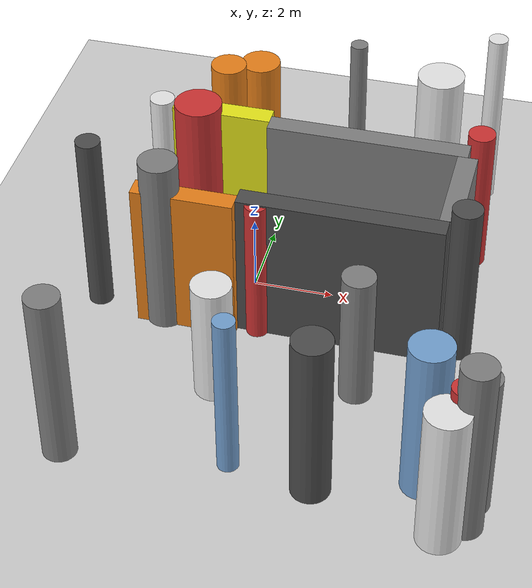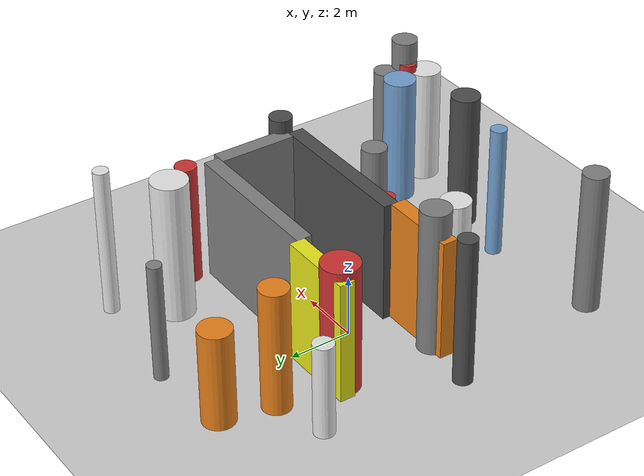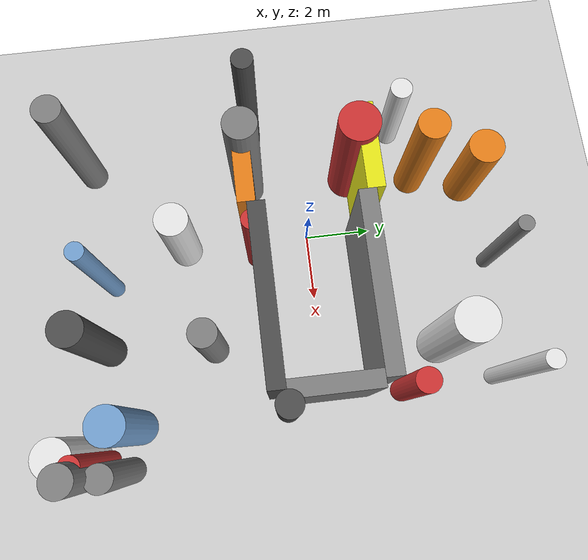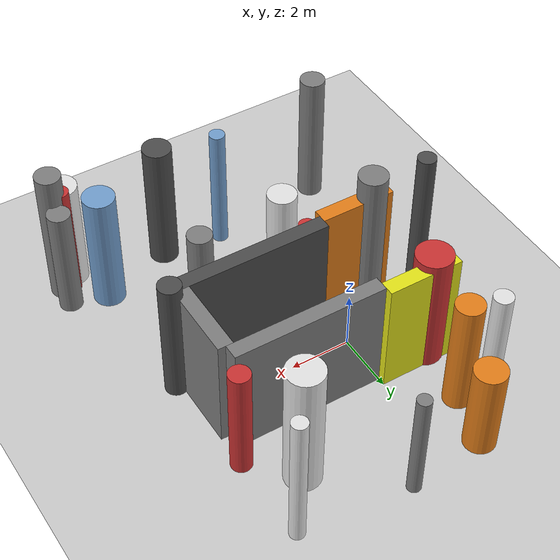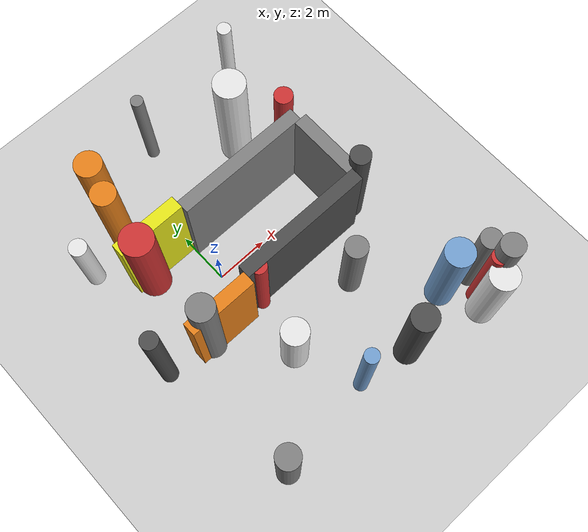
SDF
<?xml version='1.0'?>
<sdf version='1.6'>
  <world name='routeA_rl_v1__dense_recovery__rl_train__cul_de_sac_trap__000083'>
    <!-- Sun light -->
    <light name='sun' type='directional'>
      <cast_shadows>1</cast_shadows>
      <pose>0 0 10 0 0 0</pose>
      <diffuse>0.8 0.8 0.8 1</diffuse>
      <specular>0.2 0.2 0.2 1</specular>
      <attenuation>
        <range>1000</range>
        <constant>0.9</constant>
        <linear>0.01</linear>
        <quadratic>0.001</quadratic>
      </attenuation>
      <direction>-0.5 0.1 -0.9</direction>
    </light>

    <!-- Ground plane -->
    <model name='ground_plane'>
      <static>1</static>
      <link name='link'>
        <collision name='collision'>
          <geometry>
            <plane>
              <normal>0 0 1</normal>
              <size>100 100</size>
            </plane>
          </geometry>
          <surface>
            <contact>
              <collide_bitmask>65535</collide_bitmask>
              <ode/>
            </contact>
            <friction>
              <ode>
                <mu>100</mu>
                <mu2>50</mu2>
              </ode>
              <torsional><ode/></torsional>
            </friction>
            <bounce/>
          </surface>
          <max_contacts>10</max_contacts>
        </collision>
        <visual name='visual'>
          <cast_shadows>0</cast_shadows>
          <geometry>
            <plane>
              <normal>0 0 1</normal>
              <size>100 100</size>
            </plane>
          </geometry>
          <material>
            <script>
              <uri>file://media/materials/scripts/gazebo.material</uri>
              <n>Gazebo/Grey</n>
            </script>
          </material>
        </visual>
      </link>
    </model>

    <!-- Environment -->
    <magnetic_field>6e-06 2.3e-05 -4.2e-05</magnetic_field>
    <atmosphere type='adiabatic'/>
    <physics name='default_physics' default='0' type='ode'>
      <gravity>0 0 -9.8</gravity>
      <max_step_size>0.004</max_step_size>
      <real_time_factor>1</real_time_factor>
      <real_time_update_rate>250</real_time_update_rate>
    </physics>
    <scene>
      <ambient>0.4 0.4 0.4 1</ambient>
      <background>0.7 0.7 0.7 1</background>
      <shadows>1</shadows>
    </scene>
    <wind/>
    <spherical_coordinates>
      <surface_model>EARTH_WGS84</surface_model>
      <latitude_deg>0</latitude_deg>
      <longitude_deg>0</longitude_deg>
      <elevation>0</elevation>
      <heading_deg>0</heading_deg>
    </spherical_coordinates>

    <!-- ============ OBSTACLES (27) ============ -->
    <model name='trap_side_l'>
      <static>1</static>
      <link name='link'>
        <visual name='visual'>
          <geometry>
            <box>
              <size>5.0000 0.5000 4.0000</size>
            </box>
          </geometry>
          <material>
            <script>
              <n>Gazebo/DarkGrey</n>
              <uri>file://media/materials/scripts/gazebo.material</uri>
            </script>
            <ambient>0.3 0.3 0.3 1</ambient>
          </material>
        </visual>
        <collision name='collision'>
          <geometry>
            <box>
              <size>5.0000 0.5000 4.0000</size>
            </box>
          </geometry>
          <max_contacts>10</max_contacts>
          <surface>
            <contact><ode/></contact>
            <bounce/>
            <friction>
              <ode><mu>1</mu><mu2>1</mu2></ode>
              <torsional><ode/></torsional>
            </friction>
          </surface>
        </collision>
      </link>
      <pose>2.5000 -1.5000 2.0000 0 0 0.0000</pose>
    </model>

    <model name='trap_side_r'>
      <static>1</static>
      <link name='link'>
        <visual name='visual'>
          <geometry>
            <box>
              <size>5.0000 0.5000 4.0000</size>
            </box>
          </geometry>
          <material>
            <script>
              <n>Gazebo/Grey</n>
              <uri>file://media/materials/scripts/gazebo.material</uri>
            </script>
            <ambient>0.5 0.5 0.5 1</ambient>
          </material>
        </visual>
        <collision name='collision'>
          <geometry>
            <box>
              <size>5.0000 0.5000 4.0000</size>
            </box>
          </geometry>
          <max_contacts>10</max_contacts>
          <surface>
            <contact><ode/></contact>
            <bounce/>
            <friction>
              <ode><mu>1</mu><mu2>1</mu2></ode>
              <torsional><ode/></torsional>
            </friction>
          </surface>
        </collision>
      </link>
      <pose>2.5000 1.5000 2.0000 0 0 0.0000</pose>
    </model>

    <model name='trap_back'>
      <static>1</static>
      <link name='link'>
        <visual name='visual'>
          <geometry>
            <box>
              <size>0.5000 2.5000 4.0000</size>
            </box>
          </geometry>
          <material>
            <script>
              <n>Gazebo/Grey</n>
              <uri>file://media/materials/scripts/gazebo.material</uri>
            </script>
            <ambient>0.5 0.5 0.5 1</ambient>
          </material>
        </visual>
        <collision name='collision'>
          <geometry>
            <box>
              <size>0.5000 2.5000 4.0000</size>
            </box>
          </geometry>
          <max_contacts>10</max_contacts>
          <surface>
            <contact><ode/></contact>
            <bounce/>
            <friction>
              <ode><mu>1</mu><mu2>1</mu2></ode>
              <torsional><ode/></torsional>
            </friction>
          </surface>
        </collision>
      </link>
      <pose>5.0000 0.0000 2.0000 0 0 0.0000</pose>
    </model>

    <model name='trap_funnel_l'>
      <static>1</static>
      <link name='link'>
        <visual name='visual'>
          <geometry>
            <box>
              <size>2.5000 0.5000 4.0000</size>
            </box>
          </geometry>
          <material>
            <script>
              <n>Gazebo/Orange</n>
              <uri>file://media/materials/scripts/gazebo.material</uri>
            </script>
            <ambient>0.9 0.5 0.1 1</ambient>
          </material>
        </visual>
        <collision name='collision'>
          <geometry>
            <box>
              <size>2.5000 0.5000 4.0000</size>
            </box>
          </geometry>
          <max_contacts>10</max_contacts>
          <surface>
            <contact><ode/></contact>
            <bounce/>
            <friction>
              <ode><mu>1</mu><mu2>1</mu2></ode>
              <torsional><ode/></torsional>
            </friction>
          </surface>
        </collision>
      </link>
      <pose>-1.2500 -1.7500 2.0000 0 0 0.0000</pose>
    </model>

    <model name='trap_funnel_r'>
      <static>1</static>
      <link name='link'>
        <visual name='visual'>
          <geometry>
            <box>
              <size>2.5000 0.5000 4.0000</size>
            </box>
          </geometry>
          <material>
            <script>
              <n>Gazebo/Yellow</n>
              <uri>file://media/materials/scripts/gazebo.material</uri>
            </script>
            <ambient>0.9 0.9 0.1 1</ambient>
          </material>
        </visual>
        <collision name='collision'>
          <geometry>
            <box>
              <size>2.5000 0.5000 4.0000</size>
            </box>
          </geometry>
          <max_contacts>10</max_contacts>
          <surface>
            <contact><ode/></contact>
            <bounce/>
            <friction>
              <ode><mu>1</mu><mu2>1</mu2></ode>
              <torsional><ode/></torsional>
            </friction>
          </surface>
        </collision>
      </link>
      <pose>-1.2500 1.7500 2.0000 0 0 0.0000</pose>
    </model>

    <model name='trap_scatter_0'>
      <static>1</static>
      <link name='link'>
        <visual name='visual'>
          <geometry>
            <cylinder>
              <radius>0.4893</radius>
              <length>3.2595</length>
            </cylinder>
          </geometry>
          <material>
            <script>
              <n>Gazebo/White</n>
              <uri>file://media/materials/scripts/gazebo.material</uri>
            </script>
            <ambient>0.9 0.9 0.9 1</ambient>
          </material>
        </visual>
        <collision name='collision'>
          <geometry>
            <cylinder>
              <radius>0.4893</radius>
              <length>3.2595</length>
            </cylinder>
          </geometry>
          <max_contacts>10</max_contacts>
          <surface>
            <contact><ode/></contact>
            <bounce/>
            <friction>
              <ode><mu>1</mu><mu2>1</mu2></ode>
              <torsional><ode/></torsional>
            </friction>
          </surface>
        </collision>
      </link>
      <pose>0.0120 -3.8799 1.6297 0 0 0.0000</pose>
    </model>

    <model name='trap_scatter_1'>
      <static>1</static>
      <link name='link'>
        <visual name='visual'>
          <geometry>
            <cylinder>
              <radius>0.2788</radius>
              <length>3.9570</length>
            </cylinder>
          </geometry>
          <material>
            <script>
              <n>Gazebo/Red</n>
              <uri>file://media/materials/scripts/gazebo.material</uri>
            </script>
            <ambient>0.8 0.2 0.2 1</ambient>
          </material>
        </visual>
        <collision name='collision'>
          <geometry>
            <cylinder>
              <radius>0.2788</radius>
              <length>3.9570</length>
            </cylinder>
          </geometry>
          <max_contacts>10</max_contacts>
          <surface>
            <contact><ode/></contact>
            <bounce/>
            <friction>
              <ode><mu>1</mu><mu2>1</mu2></ode>
              <torsional><ode/></torsional>
            </friction>
          </surface>
        </collision>
      </link>
      <pose>0.4914 -1.6785 1.9785 0 0 0.0000</pose>
    </model>

    <model name='trap_scatter_2'>
      <static>1</static>
      <link name='link'>
        <visual name='visual'>
          <geometry>
            <cylinder>
              <radius>0.4798</radius>
              <length>4.8194</length>
            </cylinder>
          </geometry>
          <material>
            <script>
              <n>Gazebo/Grey</n>
              <uri>file://media/materials/scripts/gazebo.material</uri>
            </script>
            <ambient>0.5 0.5 0.5 1</ambient>
          </material>
        </visual>
        <collision name='collision'>
          <geometry>
            <cylinder>
              <radius>0.4798</radius>
              <length>4.8194</length>
            </cylinder>
          </geometry>
          <max_contacts>10</max_contacts>
          <surface>
            <contact><ode/></contact>
            <bounce/>
            <friction>
              <ode><mu>1</mu><mu2>1</mu2></ode>
              <torsional><ode/></torsional>
            </friction>
          </surface>
        </collision>
      </link>
      <pose>-1.8559 -1.6925 2.4097 0 0 0.0000</pose>
    </model>

    <model name='trap_scatter_3'>
      <static>1</static>
      <link name='link'>
        <visual name='visual'>
          <geometry>
            <cylinder>
              <radius>0.4205</radius>
              <length>4.8730</length>
            </cylinder>
          </geometry>
          <material>
            <script>
              <n>Gazebo/Grey</n>
              <uri>file://media/materials/scripts/gazebo.material</uri>
            </script>
            <ambient>0.5 0.5 0.5 1</ambient>
          </material>
        </visual>
        <collision name='collision'>
          <geometry>
            <cylinder>
              <radius>0.4205</radius>
              <length>4.8730</length>
            </cylinder>
          </geometry>
          <max_contacts>10</max_contacts>
          <surface>
            <contact><ode/></contact>
            <bounce/>
            <friction>
              <ode><mu>1</mu><mu2>1</mu2></ode>
              <torsional><ode/></torsional>
            </friction>
          </surface>
        </collision>
      </link>
      <pose>6.5263 -6.7231 2.4365 0 0 0.0000</pose>
    </model>

    <model name='trap_scatter_4'>
      <static>1</static>
      <link name='link'>
        <visual name='visual'>
          <geometry>
            <cylinder>
              <radius>0.5850</radius>
              <length>4.6488</length>
            </cylinder>
          </geometry>
          <material>
            <script>
              <n>Gazebo/White</n>
              <uri>file://media/materials/scripts/gazebo.material</uri>
            </script>
            <ambient>0.9 0.9 0.9 1</ambient>
          </material>
        </visual>
        <collision name='collision'>
          <geometry>
            <cylinder>
              <radius>0.5850</radius>
              <length>4.6488</length>
            </cylinder>
          </geometry>
          <max_contacts>10</max_contacts>
          <surface>
            <contact><ode/></contact>
            <bounce/>
            <friction>
              <ode><mu>1</mu><mu2>1</mu2></ode>
              <torsional><ode/></torsional>
            </friction>
          </surface>
        </collision>
      </link>
      <pose>3.9016 3.5693 2.3244 0 0 0.0000</pose>
    </model>

    <model name='trap_scatter_8'>
      <static>1</static>
      <link name='link'>
        <visual name='visual'>
          <geometry>
            <cylinder>
              <radius>0.2462</radius>
              <length>4.9229</length>
            </cylinder>
          </geometry>
          <material>
            <script>
              <n>Gazebo/White</n>
              <uri>file://media/materials/scripts/gazebo.material</uri>
            </script>
            <ambient>0.9 0.9 0.9 1</ambient>
          </material>
        </visual>
        <collision name='collision'>
          <geometry>
            <cylinder>
              <radius>0.2462</radius>
              <length>4.9229</length>
            </cylinder>
          </geometry>
          <max_contacts>10</max_contacts>
          <surface>
            <contact><ode/></contact>
            <bounce/>
            <friction>
              <ode><mu>1</mu><mu2>1</mu2></ode>
              <torsional><ode/></torsional>
            </friction>
          </surface>
        </collision>
      </link>
      <pose>5.0758 5.1373 2.4615 0 0 0.0000</pose>
    </model>

    <model name='trap_scatter_9'>
      <static>1</static>
      <link name='link'>
        <visual name='visual'>
          <geometry>
            <cylinder>
              <radius>0.5156</radius>
              <length>3.1674</length>
            </cylinder>
          </geometry>
          <material>
            <script>
              <n>Gazebo/Orange</n>
              <uri>file://media/materials/scripts/gazebo.material</uri>
            </script>
            <ambient>0.9 0.5 0.1 1</ambient>
          </material>
        </visual>
        <collision name='collision'>
          <geometry>
            <cylinder>
              <radius>0.5156</radius>
              <length>3.1674</length>
            </cylinder>
          </geometry>
          <max_contacts>10</max_contacts>
          <surface>
            <contact><ode/></contact>
            <bounce/>
            <friction>
              <ode><mu>1</mu><mu2>1</mu2></ode>
              <torsional><ode/></torsional>
            </friction>
          </surface>
        </collision>
      </link>
      <pose>-1.1852 5.2068 1.5837 0 0 0.0000</pose>
    </model>

    <model name='trap_scatter_10'>
      <static>1</static>
      <link name='link'>
        <visual name='visual'>
          <geometry>
            <cylinder>
              <radius>0.4062</radius>
              <length>3.6603</length>
            </cylinder>
          </geometry>
          <material>
            <script>
              <n>Gazebo/Grey</n>
              <uri>file://media/materials/scripts/gazebo.material</uri>
            </script>
            <ambient>0.5 0.5 0.5 1</ambient>
          </material>
        </visual>
        <collision name='collision'>
          <geometry>
            <cylinder>
              <radius>0.4062</radius>
              <length>3.6603</length>
            </cylinder>
          </geometry>
          <max_contacts>10</max_contacts>
          <surface>
            <contact><ode/></contact>
            <bounce/>
            <friction>
              <ode><mu>1</mu><mu2>1</mu2></ode>
              <torsional><ode/></torsional>
            </friction>
          </surface>
        </collision>
      </link>
      <pose>3.3074 -3.2465 1.8302 0 0 0.0000</pose>
    </model>

    <model name='trap_scatter_11'>
      <static>1</static>
      <link name='link'>
        <visual name='visual'>
          <geometry>
            <cylinder>
              <radius>0.4126</radius>
              <length>4.7134</length>
            </cylinder>
          </geometry>
          <material>
            <script>
              <n>Gazebo/Grey</n>
              <uri>file://media/materials/scripts/gazebo.material</uri>
            </script>
            <ambient>0.5 0.5 0.5 1</ambient>
          </material>
        </visual>
        <collision name='collision'>
          <geometry>
            <cylinder>
              <radius>0.4126</radius>
              <length>4.7134</length>
            </cylinder>
          </geometry>
          <max_contacts>10</max_contacts>
          <surface>
            <contact><ode/></contact>
            <bounce/>
            <friction>
              <ode><mu>1</mu><mu2>1</mu2></ode>
              <torsional><ode/></torsional>
            </friction>
          </surface>
        </collision>
      </link>
      <pose>-2.8849 -6.6988 2.3567 0 0 0.0000</pose>
    </model>

    <model name='trap_scatter_12'>
      <static>1</static>
      <link name='link'>
        <visual name='visual'>
          <geometry>
            <cylinder>
              <radius>0.3251</radius>
              <length>3.0694</length>
            </cylinder>
          </geometry>
          <material>
            <script>
              <n>Gazebo/White</n>
              <uri>file://media/materials/scripts/gazebo.material</uri>
            </script>
            <ambient>0.9 0.9 0.9 1</ambient>
          </material>
        </visual>
        <collision name='collision'>
          <geometry>
            <cylinder>
              <radius>0.3251</radius>
              <length>3.0694</length>
            </cylinder>
          </geometry>
          <max_contacts>10</max_contacts>
          <surface>
            <contact><ode/></contact>
            <bounce/>
            <friction>
              <ode><mu>1</mu><mu2>1</mu2></ode>
              <torsional><ode/></torsional>
            </friction>
          </surface>
        </collision>
      </link>
      <pose>-3.2958 3.0992 1.5347 0 0 0.0000</pose>
    </model>

    <model name='trap_scatter_13'>
      <static>1</static>
      <link name='link'>
        <visual name='visual'>
          <geometry>
            <cylinder>
              <radius>0.2594</radius>
              <length>4.4366</length>
            </cylinder>
          </geometry>
          <material>
            <script>
              <n>Gazebo/Blue</n>
              <uri>file://media/materials/scripts/gazebo.material</uri>
            </script>
            <ambient>0.447 0.624 0.812 1</ambient>
          </material>
        </visual>
        <collision name='collision'>
          <geometry>
            <cylinder>
              <radius>0.2594</radius>
              <length>4.4366</length>
            </cylinder>
          </geometry>
          <max_contacts>10</max_contacts>
          <surface>
            <contact><ode/></contact>
            <bounce/>
            <friction>
              <ode><mu>1</mu><mu2>1</mu2></ode>
              <torsional><ode/></torsional>
            </friction>
          </surface>
        </collision>
      </link>
      <pose>0.9885 -6.2040 2.2183 0 0 0.0000</pose>
    </model>

    <model name='trap_scatter_14'>
      <static>1</static>
      <link name='link'>
        <visual name='visual'>
          <geometry>
            <cylinder>
              <radius>0.2834</radius>
              <length>4.1544</length>
            </cylinder>
          </geometry>
          <material>
            <script>
              <n>Gazebo/Red</n>
              <uri>file://media/materials/scripts/gazebo.material</uri>
            </script>
            <ambient>0.8 0.2 0.2 1</ambient>
          </material>
        </visual>
        <collision name='collision'>
          <geometry>
            <cylinder>
              <radius>0.2834</radius>
              <length>4.1544</length>
            </cylinder>
          </geometry>
          <max_contacts>10</max_contacts>
          <surface>
            <contact><ode/></contact>
            <bounce/>
            <friction>
              <ode><mu>1</mu><mu2>1</mu2></ode>
              <torsional><ode/></torsional>
            </friction>
          </surface>
        </collision>
      </link>
      <pose>6.2464 -6.6466 2.0772 0 0 0.0000</pose>
    </model>

    <model name='trap_scatter_15'>
      <static>1</static>
      <link name='link'>
        <visual name='visual'>
          <geometry>
            <cylinder>
              <radius>0.4554</radius>
              <length>4.0965</length>
            </cylinder>
          </geometry>
          <material>
            <script>
              <n>Gazebo/Orange</n>
              <uri>file://media/materials/scripts/gazebo.material</uri>
            </script>
            <ambient>0.9 0.5 0.1 1</ambient>
          </material>
        </visual>
        <collision name='collision'>
          <geometry>
            <cylinder>
              <radius>0.4554</radius>
              <length>4.0965</length>
            </cylinder>
          </geometry>
          <max_contacts>10</max_contacts>
          <surface>
            <contact><ode/></contact>
            <bounce/>
            <friction>
              <ode><mu>1</mu><mu2>1</mu2></ode>
              <torsional><ode/></torsional>
            </friction>
          </surface>
        </collision>
      </link>
      <pose>-1.6006 3.5581 2.0483 0 0 0.0000</pose>
    </model>

    <model name='trap_scatter_16'>
      <static>1</static>
      <link name='link'>
        <visual name='visual'>
          <geometry>
            <cylinder>
              <radius>0.3787</radius>
              <length>3.9142</length>
            </cylinder>
          </geometry>
          <material>
            <script>
              <n>Gazebo/Grey</n>
              <uri>file://media/materials/scripts/gazebo.material</uri>
            </script>
            <ambient>0.5 0.5 0.5 1</ambient>
          </material>
        </visual>
        <collision name='collision'>
          <geometry>
            <cylinder>
              <radius>0.3787</radius>
              <length>3.9142</length>
            </cylinder>
          </geometry>
          <max_contacts>10</max_contacts>
          <surface>
            <contact><ode/></contact>
            <bounce/>
            <friction>
              <ode><mu>1</mu><mu2>1</mu2></ode>
              <torsional><ode/></torsional>
            </friction>
          </surface>
        </collision>
      </link>
      <pose>6.6088 -6.0210 1.9571 0 0 0.0000</pose>
    </model>

    <model name='trap_scatter_17'>
      <static>1</static>
      <link name='link'>
        <visual name='visual'>
          <geometry>
            <cylinder>
              <radius>0.2268</radius>
              <length>3.9025</length>
            </cylinder>
          </geometry>
          <material>
            <script>
              <n>Gazebo/Grey</n>
              <uri>file://media/materials/scripts/gazebo.material</uri>
            </script>
            <ambient>0.5 0.5 0.5 1</ambient>
          </material>
        </visual>
        <collision name='collision'>
          <geometry>
            <cylinder>
              <radius>0.2268</radius>
              <length>3.9025</length>
            </cylinder>
          </geometry>
          <max_contacts>10</max_contacts>
          <surface>
            <contact><ode/></contact>
            <bounce/>
            <friction>
              <ode><mu>1</mu><mu2>1</mu2></ode>
              <torsional><ode/></torsional>
            </friction>
          </surface>
        </collision>
      </link>
      <pose>1.4075 5.5519 1.9512 0 0 0.0000</pose>
    </model>

    <model name='trap_scatter_18'>
      <static>1</static>
      <link name='link'>
        <visual name='visual'>
          <geometry>
            <cylinder>
              <radius>0.5217</radius>
              <length>4.2678</length>
            </cylinder>
          </geometry>
          <material>
            <script>
              <n>Gazebo/Blue</n>
              <uri>file://media/materials/scripts/gazebo.material</uri>
            </script>
            <ambient>0.447 0.624 0.812 1</ambient>
          </material>
        </visual>
        <collision name='collision'>
          <geometry>
            <cylinder>
              <radius>0.5217</radius>
              <length>4.2678</length>
            </cylinder>
          </geometry>
          <max_contacts>10</max_contacts>
          <surface>
            <contact><ode/></contact>
            <bounce/>
            <friction>
              <ode><mu>1</mu><mu2>1</mu2></ode>
              <torsional><ode/></torsional>
            </friction>
          </surface>
        </collision>
      </link>
      <pose>5.3884 -5.7126 2.1339 0 0 0.0000</pose>
    </model>

    <model name='trap_scatter_19'>
      <static>1</static>
      <link name='link'>
        <visual name='visual'>
          <geometry>
            <cylinder>
              <radius>0.3059</radius>
              <length>4.8908</length>
            </cylinder>
          </geometry>
          <material>
            <script>
              <n>Gazebo/DarkGrey</n>
              <uri>file://media/materials/scripts/gazebo.material</uri>
            </script>
            <ambient>0.3 0.3 0.3 1</ambient>
          </material>
        </visual>
        <collision name='collision'>
          <geometry>
            <cylinder>
              <radius>0.3059</radius>
              <length>4.8908</length>
            </cylinder>
          </geometry>
          <max_contacts>10</max_contacts>
          <surface>
            <contact><ode/></contact>
            <bounce/>
            <friction>
              <ode><mu>1</mu><mu2>1</mu2></ode>
              <torsional><ode/></torsional>
            </friction>
          </surface>
        </collision>
      </link>
      <pose>-3.6462 -1.4445 2.4454 0 0 0.0000</pose>
    </model>

    <model name='trap_scatter_20'>
      <static>1</static>
      <link name='link'>
        <visual name='visual'>
          <geometry>
            <cylinder>
              <radius>0.5268</radius>
              <length>3.8863</length>
            </cylinder>
          </geometry>
          <material>
            <script>
              <n>Gazebo/White</n>
              <uri>file://media/materials/scripts/gazebo.material</uri>
            </script>
            <ambient>0.9 0.9 0.9 1</ambient>
          </material>
        </visual>
        <collision name='collision'>
          <geometry>
            <cylinder>
              <radius>0.5268</radius>
              <length>3.8863</length>
            </cylinder>
          </geometry>
          <max_contacts>10</max_contacts>
          <surface>
            <contact><ode/></contact>
            <bounce/>
            <friction>
              <ode><mu>1</mu><mu2>1</mu2></ode>
              <torsional><ode/></torsional>
            </friction>
          </surface>
        </collision>
      </link>
      <pose>6.0112 -7.1626 1.9431 0 0 0.0000</pose>
    </model>

    <model name='trap_scatter_21'>
      <static>1</static>
      <link name='link'>
        <visual name='visual'>
          <geometry>
            <cylinder>
              <radius>0.5950</radius>
              <length>4.2485</length>
            </cylinder>
          </geometry>
          <material>
            <script>
              <n>Gazebo/Red</n>
              <uri>file://media/materials/scripts/gazebo.material</uri>
            </script>
            <ambient>0.8 0.2 0.2 1</ambient>
          </material>
        </visual>
        <collision name='collision'>
          <geometry>
            <cylinder>
              <radius>0.5950</radius>
              <length>4.2485</length>
            </cylinder>
          </geometry>
          <max_contacts>10</max_contacts>
          <surface>
            <contact><ode/></contact>
            <bounce/>
            <friction>
              <ode><mu>1</mu><mu2>1</mu2></ode>
              <torsional><ode/></torsional>
            </friction>
          </surface>
        </collision>
      </link>
      <pose>-1.8294 1.5303 2.1242 0 0 0.0000</pose>
    </model>

    <model name='trap_scatter_22'>
      <static>1</static>
      <link name='link'>
        <visual name='visual'>
          <geometry>
            <cylinder>
              <radius>0.3692</radius>
              <length>4.4203</length>
            </cylinder>
          </geometry>
          <material>
            <script>
              <n>Gazebo/DarkGrey</n>
              <uri>file://media/materials/scripts/gazebo.material</uri>
            </script>
            <ambient>0.3 0.3 0.3 1</ambient>
          </material>
        </visual>
        <collision name='collision'>
          <geometry>
            <cylinder>
              <radius>0.3692</radius>
              <length>4.4203</length>
            </cylinder>
          </geometry>
          <max_contacts>10</max_contacts>
          <surface>
            <contact><ode/></contact>
            <bounce/>
            <friction>
              <ode><mu>1</mu><mu2>1</mu2></ode>
              <torsional><ode/></torsional>
            </friction>
          </surface>
        </collision>
      </link>
      <pose>5.3884 -1.2162 2.2102 0 0 0.0000</pose>
    </model>

    <model name='trap_scatter_23'>
      <static>1</static>
      <link name='link'>
        <visual name='visual'>
          <geometry>
            <cylinder>
              <radius>0.4732</radius>
              <length>4.5639</length>
            </cylinder>
          </geometry>
          <material>
            <script>
              <n>Gazebo/DarkGrey</n>
              <uri>file://media/materials/scripts/gazebo.material</uri>
            </script>
            <ambient>0.3 0.3 0.3 1</ambient>
          </material>
        </visual>
        <collision name='collision'>
          <geometry>
            <cylinder>
              <radius>0.4732</radius>
              <length>4.5639</length>
            </cylinder>
          </geometry>
          <max_contacts>10</max_contacts>
          <surface>
            <contact><ode/></contact>
            <bounce/>
            <friction>
              <ode><mu>1</mu><mu2>1</mu2></ode>
              <torsional><ode/></torsional>
            </friction>
          </surface>
        </collision>
      </link>
      <pose>2.9798 -6.4726 2.2819 0 0 0.0000</pose>
    </model>

    <model name='trap_scatter_24'>
      <static>1</static>
      <link name='link'>
        <visual name='visual'>
          <geometry>
            <cylinder>
              <radius>0.3412</radius>
              <length>4.0007</length>
            </cylinder>
          </geometry>
          <material>
            <script>
              <n>Gazebo/Red</n>
              <uri>file://media/materials/scripts/gazebo.material</uri>
            </script>
            <ambient>0.8 0.2 0.2 1</ambient>
          </material>
        </visual>
        <collision name='collision'>
          <geometry>
            <cylinder>
              <radius>0.3412</radius>
              <length>4.0007</length>
            </cylinder>
          </geometry>
          <max_contacts>10</max_contacts>
          <surface>
            <contact><ode/></contact>
            <bounce/>
            <friction>
              <ode><mu>1</mu><mu2>1</mu2></ode>
              <torsional><ode/></torsional>
            </friction>
          </surface>
        </collision>
      </link>
      <pose>5.1834 2.2935 2.0003 0 0 0.0000</pose>
    </model>

    <!-- GUI camera -->
    <gui fullscreen='0'>
      <camera name='user_camera'>
        <pose>-15 0 18 0 0.85 0.15</pose>
        <view_controller>orbit</view_controller>
        <projection_type>perspective</projection_type>
      </camera>
    </gui>
  </world>
</sdf>
